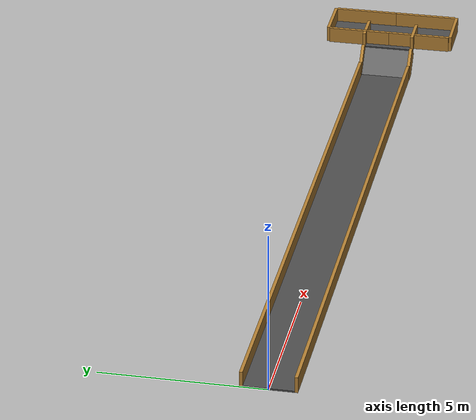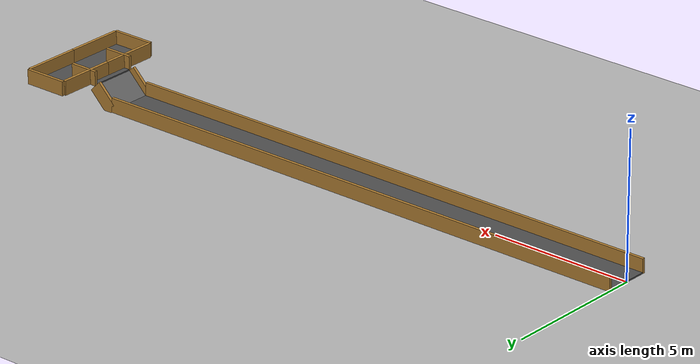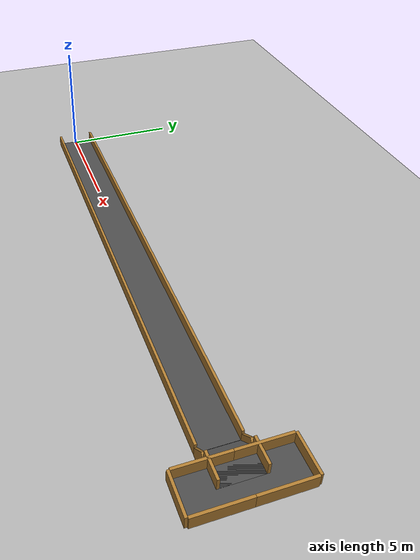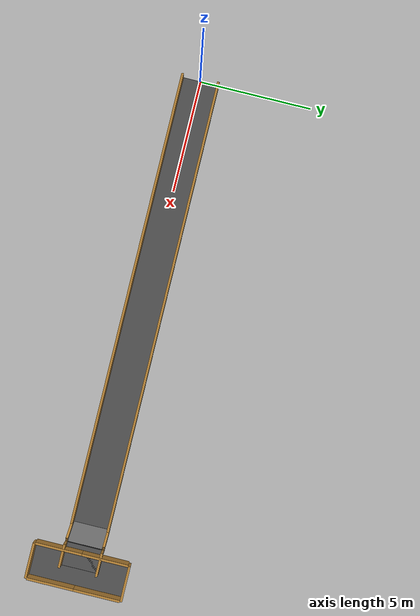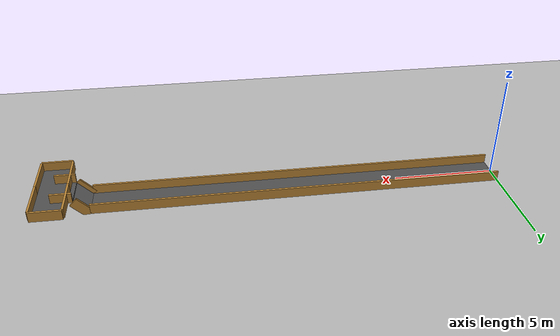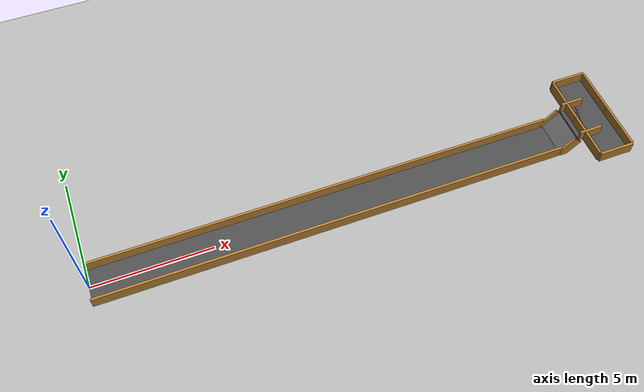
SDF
<?xml version="1.0" encoding="utf-8"?>
<sdf version="1.6">
  <world name="course_test">

    <!-- lighting: directional light -->
    <light type="directional" name="sun">
      <pose>0 0 10 0 0 0</pose>
      <diffuse>0.8 0.8 0.8 1</diffuse>
      <specular>0.2 0.2 0.2 1</specular>
      <direction>-0.5 0.1 -0.9</direction>
      <cast_shadows>true</cast_shadows>
    </light>

    <!-- ground plane -->
    <model name="ground_plane">
      <static>true</static>
      <link name="link">
        <collision name="collision">
          <geometry><plane><normal>0 0 1</normal><size>100 100</size></plane></geometry>
        </collision>
        <visual name="visual">
          <geometry><plane><normal>0 0 1</normal><size>100 100</size></plane></geometry>
          <material>
            <ambient>0.5 0.5 0.5 1</ambient>
            <diffuse>0.7 0.7 0.7 1</diffuse>
          </material>
        </visual>
      </link>
    </model>

    <!-- PATH MODEL: flat straight → 45° ramp → elevated flat → T-junction -->
    <!-- Path width: 1.5 m   Wall height: 0.5 m   Wall thickness: 0.1 m -->

    <model name="test_course">
      <static>true</static>

      <!-- ===== SEGMENT 1: flat straight, X = 0 → 20, Z = 0 ===== -->
      <!-- floor -->
      <link name="seg1_floor">
        <pose>10 0 0.025 0 0 0</pose>
        <collision name="collision">
          <geometry><box><size>20 1.5 0.05</size></box></geometry>
          <surface>
            <friction><ode><mu>1.0</mu><mu2>1.0</mu2></ode></friction>
          </surface>
        </collision>
        <visual name="visual">
          <geometry><box><size>20 1.5 0.05</size></box></geometry>
          <material><ambient>0.3 0.3 0.3 1</ambient></material>
        </visual>
      </link>

      <!-- seg1 left wall -->
      <link name="seg1_wall_left">
        <pose>10 -0.8 0.25 0 0 0</pose>
        <collision name="collision">
          <geometry><box><size>20 0.1 0.5</size></box></geometry>
        </collision>
        <visual name="visual">
          <geometry><box><size>20 0.1 0.5</size></box></geometry>
          <material><ambient>0.7 0.5 0.2 1</ambient></material>
        </visual>
      </link>

      <!-- seg1 right wall -->
      <link name="seg1_wall_right">
        <pose>10 0.8 0.25 0 0 0</pose>
        <collision name="collision">
          <geometry><box><size>20 0.1 0.5</size></box></geometry>
        </collision>
        <visual name="visual">
          <geometry><box><size>20 0.1 0.5</size></box></geometry>
          <material><ambient>0.7 0.5 0.2 1</ambient></material>
        </visual>
      </link>

      <!-- ===== SEGMENT 2: 45° ramp, length 1 m along slope ===== -->
      <!-- ΔX = cos45° ≈ 0.7071,  ΔZ = sin45° ≈ 0.7071 -->
      <!-- ramp floor: centre = (20.3536, 0, 0.3536), pitch = -0.7854 -->
      <link name="seg2_floor">
        <pose>20.3536 0 0.3536 0 -0.7854 0</pose>
        <collision name="collision">
          <geometry><box><size>1.0 1.5 0.05</size></box></geometry>
          <surface>
            <friction><ode><mu>1.0</mu><mu2>1.0</mu2></ode></friction>
          </surface>
        </collision>
        <visual name="visual">
          <geometry><box><size>1.0 1.5 0.05</size></box></geometry>
          <material><ambient>0.4 0.4 0.4 1</ambient></material>
        </visual>
      </link>

      <!-- seg2 left wall -->
      <link name="seg2_wall_left">
        <pose>20.3536 -0.8 0.3536 0 -0.7854 0</pose>
        <collision name="collision">
          <geometry><box><size>1.0 0.1 0.5</size></box></geometry>
        </collision>
        <visual name="visual">
          <geometry><box><size>1.0 0.1 0.5</size></box></geometry>
          <material><ambient>0.7 0.5 0.2 1</ambient></material>
        </visual>
      </link>

      <!-- seg2 right wall -->
      <link name="seg2_wall_right">
        <pose>20.3536 0.8 0.3536 0 -0.7854 0</pose>
        <collision name="collision">
          <geometry><box><size>1.0 0.1 0.5</size></box></geometry>
        </collision>
        <visual name="visual">
          <geometry><box><size>1.0 0.1 0.5</size></box></geometry>
          <material><ambient>0.7 0.5 0.2 1</ambient></material>
        </visual>
      </link>

      <!-- ===== SEGMENT 3: elevated flat, X = 20.7071 → 21.7071, Z = 0.7071 ===== -->
      <!-- floor -->
      <link name="seg3_floor">
        <pose>21.2071 0 0.7321 0 0 0</pose>
        <collision name="collision">
          <geometry><box><size>1.0 1.5 0.05</size></box></geometry>
          <surface>
            <friction><ode><mu>1.0</mu><mu2>1.0</mu2></ode></friction>
          </surface>
        </collision>
        <visual name="visual">
          <geometry><box><size>1.0 1.5 0.05</size></box></geometry>
          <material><ambient>0.3 0.3 0.3 1</ambient></material>
        </visual>
      </link>

      <!-- seg3 left wall -->
      <link name="seg3_wall_left">
        <pose>21.2071 -0.8 0.9571 0 0 0</pose>
        <collision name="collision">
          <geometry><box><size>1.0 0.1 0.5</size></box></geometry>
        </collision>
        <visual name="visual">
          <geometry><box><size>1.0 0.1 0.5</size></box></geometry>
          <material><ambient>0.7 0.5 0.2 1</ambient></material>
        </visual>
      </link>

      <!-- seg3 right wall -->
      <link name="seg3_wall_right">
        <pose>21.2071 0.8 0.9571 0 0 0</pose>
        <collision name="collision">
          <geometry><box><size>1.0 0.1 0.5</size></box></geometry>
        </collision>
        <visual name="visual">
          <geometry><box><size>1.0 0.1 0.5</size></box></geometry>
          <material><ambient>0.7 0.5 0.2 1</ambient></material>
        </visual>
      </link>

      <!-- ===== T-JUNCTION (at X = 21.7071, Z = 0.7071) ===== -->
      <!-- The junction extends ±2 m along Y -->
      <!-- junction floor (cross-shaped, main bar spans Y from -2 to +2) -->
      <link name="junction_floor">
        <pose>21.7071 0 0.7321 0 0 0</pose>
        <collision name="collision">
          <geometry><box><size>1.5 4.0 0.05</size></box></geometry>
          <surface>
            <friction><ode><mu>1.0</mu><mu2>1.0</mu2></ode></friction>
          </surface>
        </collision>
        <visual name="visual">
          <geometry><box><size>1.5 4.0 0.05</size></box></geometry>
          <material><ambient>0.3 0.3 0.3 1</ambient></material>
        </visual>
      </link>

      <!-- junction: +Y branch left wall (X = 20.9571 side) -->
      <link name="junction_wall_yl_left">
        <pose>20.9571 1.0 0.9571 0 0 0</pose>
        <collision name="collision">
          <geometry><box><size>0.1 2.0 0.5</size></box></geometry>
        </collision>
        <visual name="visual">
          <geometry><box><size>0.1 2.0 0.5</size></box></geometry>
          <material><ambient>0.7 0.5 0.2 1</ambient></material>
        </visual>
      </link>

      <!-- junction: +Y branch right wall (X = 22.4571 side) -->
      <link name="junction_wall_yr_right">
        <pose>22.4571 1.0 0.9571 0 0 0</pose>
        <collision name="collision">
          <geometry><box><size>0.1 2.0 0.5</size></box></geometry>
        </collision>
        <visual name="visual">
          <geometry><box><size>0.1 2.0 0.5</size></box></geometry>
          <material><ambient>0.7 0.5 0.2 1</ambient></material>
        </visual>
      </link>

      <!-- junction: -Y branch left wall (X = 20.9571 side) -->
      <link name="junction_wall_yl_left_neg">
        <pose>20.9571 -1.0 0.9571 0 0 0</pose>
        <collision name="collision">
          <geometry><box><size>0.1 2.0 0.5</size></box></geometry>
        </collision>
        <visual name="visual">
          <geometry><box><size>0.1 2.0 0.5</size></box></geometry>
          <material><ambient>0.7 0.5 0.2 1</ambient></material>
        </visual>
      </link>

      <!-- junction: -Y branch right wall (X = 22.4571 side) -->
      <link name="junction_wall_yr_right_neg">
        <pose>22.4571 -1.0 0.9571 0 0 0</pose>
        <collision name="collision">
          <geometry><box><size>0.1 2.0 0.5</size></box></geometry>
        </collision>
        <visual name="visual">
          <geometry><box><size>0.1 2.0 0.5</size></box></geometry>
          <material><ambient>0.7 0.5 0.2 1</ambient></material>
        </visual>
      </link>

      <!-- junction: +Y end cap wall -->
      <link name="junction_wall_end_pos_y">
        <pose>21.7071 2.05 0.9571 0 0 0</pose>
        <collision name="collision">
          <geometry><box><size>1.5 0.1 0.5</size></box></geometry>
        </collision>
        <visual name="visual">
          <geometry><box><size>1.5 0.1 0.5</size></box></geometry>
          <material><ambient>0.7 0.5 0.2 1</ambient></material>
        </visual>
      </link>

      <!-- junction: -Y end cap wall -->
      <link name="junction_wall_end_neg_y">
        <pose>21.7071 -2.05 0.9571 0 0 0</pose>
        <collision name="collision">
          <geometry><box><size>1.5 0.1 0.5</size></box></geometry>
        </collision>
        <visual name="visual">
          <geometry><box><size>1.5 0.1 0.5</size></box></geometry>
          <material><ambient>0.7 0.5 0.2 1</ambient></material>
        </visual>
      </link>

    </model>

  </world>
</sdf>
